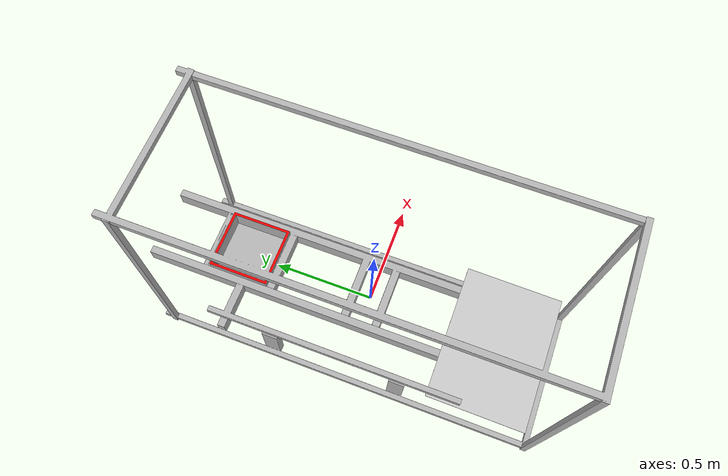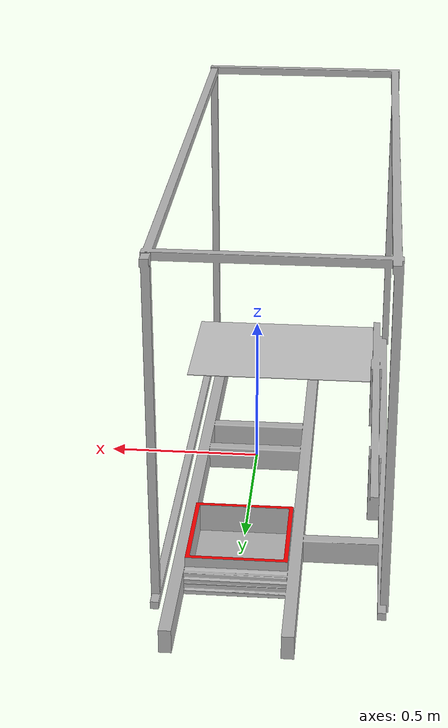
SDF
<?xml version='1.0'?>
<sdf version='1.4'>
<model name="environment">
  <pose>0 0 0 0 0 0</pose>
  <static>1</static>

  <link name="support_frame">
   <collision name="collision">
    <pose>0 0 0 0 0 0</pose>
    <geometry>
     <mesh>
      <uri>model://support_frame/mesh/new_workspace.dae</uri>
     </mesh>
    </geometry>
    <surface>
     <friction>
       <ode>
         <mu>2</mu>
         <mu2>2</mu2>
       </ode>
       <torsional>
         <ode/>
       </torsional>
     </friction>
     <contact>
       <ode/>
     </contact>
     <bounce/>
    </surface>
    <max_contacts>10</max_contacts>
   </collision>
   <inertial>
    <mass>1000</mass>
   </inertial>
   <visual name="visual">
    <geometry>
     <mesh>
      <uri>model://support_frame/mesh/new_workspace.dae</uri>
     </mesh>
    </geometry>
   </visual>
   <self_collide>0</self_collide>
   <enable_wind>0</enable_wind>
   <kinematic>0</kinematic>
  </link>

  <link name="box_top">
   <pose>0 0.645 .107 0 0 0</pose>
   <collision name="collision">
    <geometry>
     <mesh>
      <uri>model://support_frame/mesh/box_top.dae</uri>
     </mesh>
    </geometry>
    <surface>
     <friction>
       <ode>
         <mu>2</mu>
         <mu2>2</mu2>
       </ode>
       <torsional>
         <ode/>
       </torsional>
     </friction>
     <contact>
       <ode/>
     </contact>
     <bounce/>
    </surface>
    <max_contacts>10</max_contacts>
   </collision>
   <inertial>
    <mass>1000</mass>
   </inertial>
   <visual name="visual">
    <geometry>
     <mesh>
      <uri>model://support_frame/mesh/box_top.dae</uri>
     </mesh>
    </geometry>
    <material>
      <ambient>1 0 0 1</ambient>
      <diffuse>1 0 0 1</diffuse>
      <specular>0.1 0.1 0.1 1</specular>
      <emissive>0 0 0 0</emissive>
    </material>
   </visual>
   <self_collide>0</self_collide>
   <enable_wind>0</enable_wind>
   <kinematic>0</kinematic>
  </link>

  <link name="scan_plane">
   <pose>-.05 -0.65 .083 0 0 0</pose>
   <collision name="collision">
    <geometry>
     <mesh>
      <uri>model://support_frame/mesh/scan_plane_1deg.dae</uri>
     </mesh>
    </geometry>
    <surface>
     <friction>
       <ode>
         <mu>2</mu>
         <mu2>2</mu2>
       </ode>
       <torsional>
         <ode/>
       </torsional>
     </friction>
     <contact>
       <ode/>
     </contact>
     <bounce/>
    </surface>
    <max_contacts>10</max_contacts>
   </collision>
   <inertial>
    <mass>1000</mass>
   </inertial>
   <visual name="visual">
    <geometry>
     <mesh>
      <uri>model://support_frame/mesh/scan_plane_1deg.dae</uri>
     </mesh>
    </geometry>
   </visual>
   <self_collide>0</self_collide>
   <enable_wind>0</enable_wind>
   <kinematic>0</kinematic>
  </link>

  <joint name="box_top_joint" type="fixed">
    <pose>0 0 0 0 0 0</pose>
    <child>box_top</child>
    <parent>support_frame</parent>
  </joint>
 </model>
</sdf>
